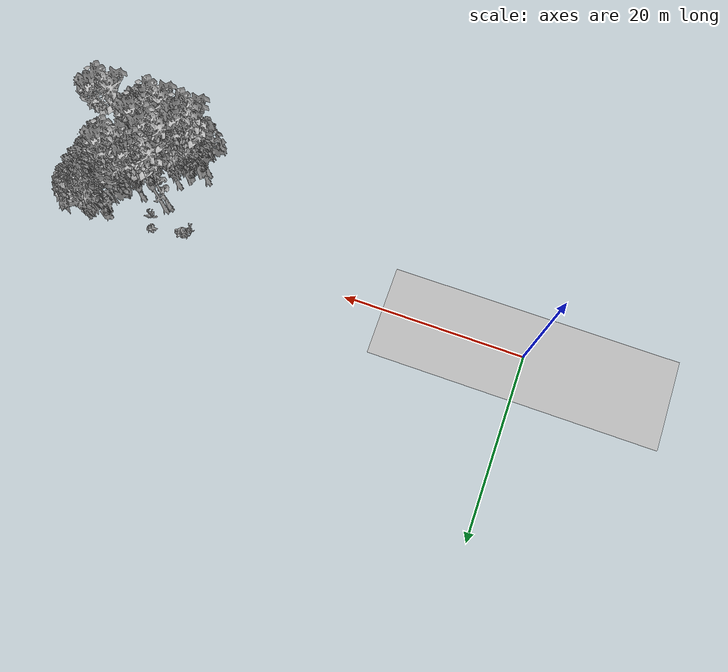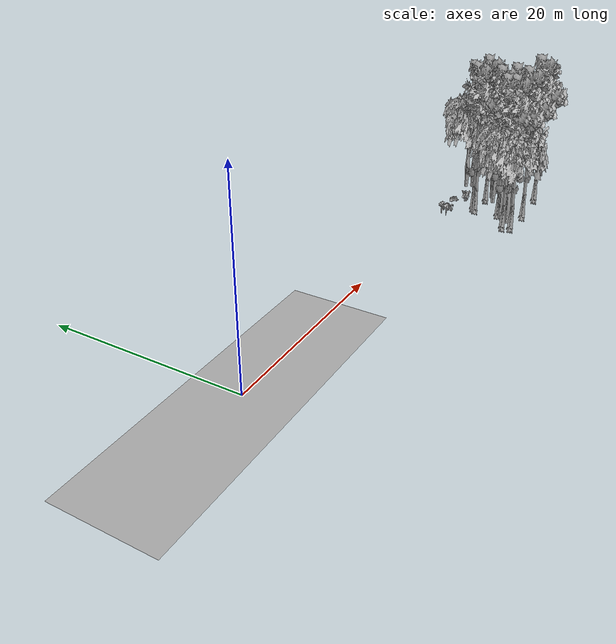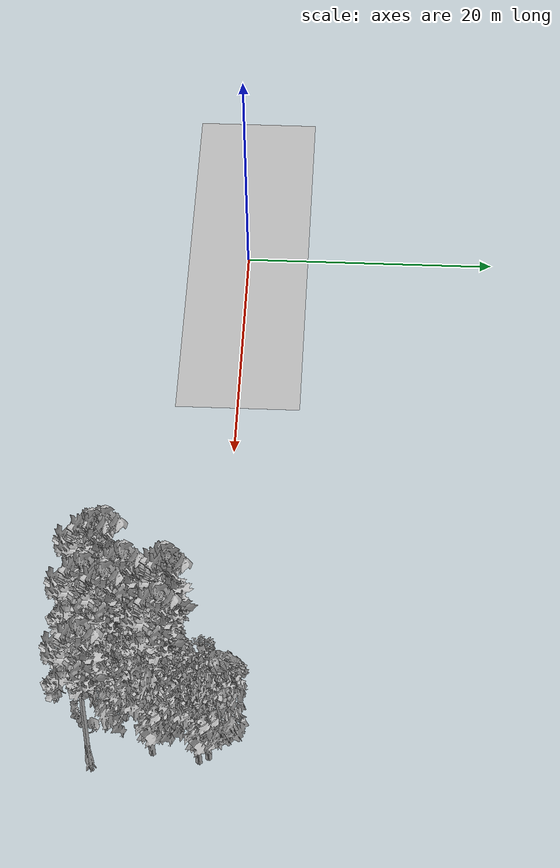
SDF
<sdf version="1.7">
 <world name="default">
  <model name="ground_plane">
   <static>1</static>
   <link name="link">
    <collision name="collision">
     <geometry><plane><normal>0 0 1</normal><size>100 100</size></plane></geometry>
     <surface><contact><ode><min_depth>0.01</min_depth><max_vel>0</max_vel></ode></contact></surface>
    </collision>
    <visual name="grass">
     <cast_shadows>0</cast_shadows>
     <geometry>
      <mesh>
       <scale>0.5814285714285714 0.18142857142857144 0.1</scale>
       <uri>file://grass_plane/meshes/grass_plane.dae</uri>
      </mesh>
     </geometry>
    </visual>
   </link>
  </model>
  <model name="Tree 12">
   <static>1</static>
   <pose>42.74366495596955 -8.739128185458405 0 1.57079 -0 0</pose>
   <link name="link">
    <collision name="collision">
     <geometry><mesh><scale>3.5 5 3.5</scale><uri>model://tree_9/meshes/tree_9.obj</uri></mesh></geometry>
    </collision>
    <visual name="visual">
     <geometry><mesh><scale>3.5 5 3.5</scale><uri>model://tree_9/meshes/tree_9.obj</uri></mesh></geometry>
    </visual>
   </link>
  </model>
  <model name="Tree 33">
   <static>1</static>
   <pose>41.0817297158344 -7.608581405884625 0 1.57079 -0 0</pose>
   <link name="link">
    <collision name="collision">
     <geometry><mesh><scale>3.5 5 3.5</scale><uri>model://tree_2/meshes/tree_2.obj</uri></mesh></geometry>
    </collision>
    <visual name="visual">
     <geometry><mesh><scale>3.5 5 3.5</scale><uri>model://tree_2/meshes/tree_2.obj</uri></mesh></geometry>
    </visual>
   </link>
  </model>
  <model name="Tree 42">
   <static>1</static>
   <pose>41.75406897602221 -3.3906887867092355 0 1.57079 -0 0</pose>
   <link name="link">
    <collision name="collision">
     <geometry><mesh><scale>3.5 5 3.5</scale><uri>model://tree_9/meshes/tree_9.obj</uri></mesh></geometry>
    </collision>
    <visual name="visual">
     <geometry><mesh><scale>3.5 5 3.5</scale><uri>model://tree_9/meshes/tree_9.obj</uri></mesh></geometry>
    </visual>
   </link>
  </model>
  <model name="Tree 43">
   <static>1</static>
   <pose>39.223682710291115 -8.523027827143974 0 1.57079 -0 0</pose>
   <link name="link">
    <collision name="collision">
     <geometry><mesh><scale>3.5 5 3.5</scale><uri>model://tree_9/meshes/tree_9.obj</uri></mesh></geometry>
    </collision>
    <visual name="visual">
     <geometry><mesh><scale>3.5 5 3.5</scale><uri>model://tree_9/meshes/tree_9.obj</uri></mesh></geometry>
    </visual>
   </link>
  </model>
  <model name="Tree 168">
   <static>1</static>
   <pose>47.183860038633796 -0.15700855947370584 0 1.57079 -0 0</pose>
   <link name="link">
    <collision name="collision">
     <geometry><mesh><scale>3.5 5 3.5</scale><uri>model://tree_2/meshes/tree_2.obj</uri></mesh></geometry>
    </collision>
    <visual name="visual">
     <geometry><mesh><scale>3.5 5 3.5</scale><uri>model://tree_2/meshes/tree_2.obj</uri></mesh></geometry>
    </visual>
   </link>
  </model>
  <model name="Tree 208">
   <static>1</static>
   <pose>40.63743900190697 -6.778148345114465 0 1.57079 -0 0</pose>
   <link name="link">
    <collision name="collision">
     <geometry><mesh><scale>3.5 5 3.5</scale><uri>model://tree_2/meshes/tree_2.obj</uri></mesh></geometry>
    </collision>
    <visual name="visual">
     <geometry><mesh><scale>3.5 5 3.5</scale><uri>model://tree_2/meshes/tree_2.obj</uri></mesh></geometry>
    </visual>
   </link>
  </model>
  <model name="Tree 210">
   <static>1</static>
   <pose>38.96305721621451 -7.656295915459372 0 1.57079 -0 0</pose>
   <link name="link">
    <collision name="collision">
     <geometry><mesh><scale>3.5 5 3.5</scale><uri>model://tree_9/meshes/tree_9.obj</uri></mesh></geometry>
    </collision>
    <visual name="visual">
     <geometry><mesh><scale>3.5 5 3.5</scale><uri>model://tree_9/meshes/tree_9.obj</uri></mesh></geometry>
    </visual>
   </link>
  </model>
  <model name="Tree 256">
   <static>1</static>
   <pose>45.42595544063235 -4.059047451546055 0 1.57079 -0 0</pose>
   <link name="link">
    <collision name="collision">
     <geometry><mesh><scale>3.5 5 3.5</scale><uri>model://tree_2/meshes/tree_2.obj</uri></mesh></geometry>
    </collision>
    <visual name="visual">
     <geometry><mesh><scale>3.5 5 3.5</scale><uri>model://tree_2/meshes/tree_2.obj</uri></mesh></geometry>
    </visual>
   </link>
  </model>
  <model name="Tree 271">
   <static>1</static>
   <pose>47.940437532343935 -8.489108751104423 0 1.57079 -0 0</pose>
   <link name="link">
    <collision name="collision">
     <geometry><mesh><scale>3.5 5 3.5</scale><uri>model://tree_9/meshes/tree_9.obj</uri></mesh></geometry>
    </collision>
    <visual name="visual">
     <geometry><mesh><scale>3.5 5 3.5</scale><uri>model://tree_9/meshes/tree_9.obj</uri></mesh></geometry>
    </visual>
   </link>
  </model>
  <model name="Tree 276">
   <static>1</static>
   <pose>41.80104837761826 -6.120153811868997 0 1.57079 -0 0</pose>
   <link name="link">
    <collision name="collision">
     <geometry><mesh><scale>3.5 5 3.5</scale><uri>model://tree_9/meshes/tree_9.obj</uri></mesh></geometry>
    </collision>
    <visual name="visual">
     <geometry><mesh><scale>3.5 5 3.5</scale><uri>model://tree_9/meshes/tree_9.obj</uri></mesh></geometry>
    </visual>
   </link>
  </model>
  <model name="Tree 290">
   <static>1</static>
   <pose>39.80091700174326 -7.834005677650366 0 1.57079 -0 0</pose>
   <link name="link">
    <collision name="collision">
     <geometry><mesh><scale>3.5 5 3.5</scale><uri>model://tree_2/meshes/tree_2.obj</uri></mesh></geometry>
    </collision>
    <visual name="visual">
     <geometry><mesh><scale>3.5 5 3.5</scale><uri>model://tree_2/meshes/tree_2.obj</uri></mesh></geometry>
    </visual>
   </link>
  </model>
  <model name="Tree 330">
   <static>1</static>
   <pose>44.23186218859824 -6.299525661252172 0 1.57079 -0 0</pose>
   <link name="link">
    <collision name="collision">
     <geometry><mesh><scale>3.5 5 3.5</scale><uri>model://tree_2/meshes/tree_2.obj</uri></mesh></geometry>
    </collision>
    <visual name="visual">
     <geometry><mesh><scale>3.5 5 3.5</scale><uri>model://tree_2/meshes/tree_2.obj</uri></mesh></geometry>
    </visual>
   </link>
  </model>
  <model name="Tree 333">
   <static>1</static>
   <pose>44.20327804722501 -4.6542972984919455 0 1.57079 -0 0</pose>
   <link name="link">
    <collision name="collision">
     <geometry><mesh><scale>3.5 5 3.5</scale><uri>model://tree_2/meshes/tree_2.obj</uri></mesh></geometry>
    </collision>
    <visual name="visual">
     <geometry><mesh><scale>3.5 5 3.5</scale><uri>model://tree_2/meshes/tree_2.obj</uri></mesh></geometry>
    </visual>
   </link>
  </model>
  <model name="Tree 342">
   <static>1</static>
   <pose>45.02691341825607 -3.5032429815158554 0 1.57079 -0 0</pose>
   <link name="link">
    <collision name="collision">
     <geometry><mesh><scale>3.5 5 3.5</scale><uri>model://tree_9/meshes/tree_9.obj</uri></mesh></geometry>
    </collision>
    <visual name="visual">
     <geometry><mesh><scale>3.5 5 3.5</scale><uri>model://tree_9/meshes/tree_9.obj</uri></mesh></geometry>
    </visual>
   </link>
  </model>
  <model name="Tree 358">
   <static>1</static>
   <pose>42.0959991112164 -2.99718807251268 0 1.57079 -0 0</pose>
   <link name="link">
    <collision name="collision">
     <geometry><mesh><scale>3.5 5 3.5</scale><uri>model://tree_9/meshes/tree_9.obj</uri></mesh></geometry>
    </collision>
    <visual name="visual">
     <geometry><mesh><scale>3.5 5 3.5</scale><uri>model://tree_9/meshes/tree_9.obj</uri></mesh></geometry>
    </visual>
   </link>
  </model>
  <model name="Tree 385">
   <static>1</static>
   <pose>43.327530110065766 -7.281440796119073 0 1.57079 -0 0</pose>
   <link name="link">
    <collision name="collision">
     <geometry><mesh><scale>3.5 5 3.5</scale><uri>model://tree_9/meshes/tree_9.obj</uri></mesh></geometry>
    </collision>
    <visual name="visual">
     <geometry><mesh><scale>3.5 5 3.5</scale><uri>model://tree_9/meshes/tree_9.obj</uri></mesh></geometry>
    </visual>
   </link>
  </model>
  <model name="Tree 415">
   <static>1</static>
   <pose>47.54166395555508 -0.8132558612128502 0 1.57079 -0 0</pose>
   <link name="link">
    <collision name="collision">
     <geometry><mesh><scale>3.5 5 3.5</scale><uri>model://tree_2/meshes/tree_2.obj</uri></mesh></geometry>
    </collision>
    <visual name="visual">
     <geometry><mesh><scale>3.5 5 3.5</scale><uri>model://tree_2/meshes/tree_2.obj</uri></mesh></geometry>
    </visual>
   </link>
  </model>
  <model name="Tree 428">
   <static>1</static>
   <pose>46.97177252249223 -4.149309650399191 0 1.57079 -0 0</pose>
   <link name="link">
    <collision name="collision">
     <geometry><mesh><scale>3.5 5 3.5</scale><uri>model://tree_2/meshes/tree_2.obj</uri></mesh></geometry>
    </collision>
    <visual name="visual">
     <geometry><mesh><scale>3.5 5 3.5</scale><uri>model://tree_2/meshes/tree_2.obj</uri></mesh></geometry>
    </visual>
   </link>
  </model>
  <model name="Bush 80">
   <static>1</static>
   <pose>39.47956591313081 -0.8617348464469803 0 1.57079 -0 0</pose>
   <link name="link">
    <collision name="collision">
     <geometry><mesh><scale>2 2 2</scale><uri>model://bush_3/meshes/bush_3.obj</uri></mesh></geometry>
     <surface><contact><collide_without_contact>false</collide_without_contact></contact></surface>
    </collision>
    <visual name="visual">
     <geometry><mesh><scale>2 2 2</scale><uri>model://bush_3/meshes/bush_3.obj</uri></mesh></geometry>
    </visual>
   </link>
  </model>
  <model name="Bush 195">
   <static>1</static>
   <pose>43.14517993847089 -1.7441644093500646 0 1.57079 -0 0</pose>
   <link name="link">
    <collision name="collision">
     <geometry><mesh><scale>2 2 2</scale><uri>model://bush_4/meshes/bush_4.obj</uri></mesh></geometry>
     <surface><contact><collide_without_contact>false</collide_without_contact></contact></surface>
    </collision>
    <visual name="visual">
     <geometry><mesh><scale>2 2 2</scale><uri>model://bush_4/meshes/bush_4.obj</uri></mesh></geometry>
    </visual>
   </link>
  </model>
  <model name="Bush 203">
   <static>1</static>
   <pose>42.65199883409191 -0.4280736047403426 0 1.57079 -0 0</pose>
   <link name="link">
    <collision name="collision">
     <geometry><mesh><scale>2 2 2</scale><uri>model://bush_2/meshes/bush_2.obj</uri></mesh></geometry>
     <surface><contact><collide_without_contact>false</collide_without_contact></contact></surface>
    </collision>
    <visual name="visual">
     <geometry><mesh><scale>2 2 2</scale><uri>model://bush_2/meshes/bush_2.obj</uri></mesh></geometry>
    </visual>
   </link>
  </model>
  <model name="Bush 259">
   <static>1</static>
   <pose>38.56774889547077 -0.5540692963188061 0 1.57079 -0 0</pose>
   <link name="link">
    <collision name="collision">
     <geometry><mesh><scale>2 2 2</scale><uri>model://bush_5/meshes/bush_5.obj</uri></mesh></geometry>
     <surface><contact><collide_without_contact>false</collide_without_contact></contact></surface>
    </collision>
    <visual name="visual">
     <geometry><mesh><scale>2 2 2</scale><uri>model://bush_5/meshes/bush_5.obj</uri></mesh></geometry>
    </visual>
   </link>
  </model>
  <model name="Bush 268">
   <static>1</static>
   <pose>38.374857526975745 -1.1930524624922025 0 1.57079 -0 0</pose>
   <link name="link">
    <collision name="collision">
     <geometry><mesh><scale>2 2 2</scale><uri>model://bush_5/meshes/bush_5.obj</uri></mesh></geometry>
     <surface><contact><collide_without_contact>false</collide_without_contact></contact></surface>
    </collision>
    <visual name="visual">
     <geometry><mesh><scale>2 2 2</scale><uri>model://bush_5/meshes/bush_5.obj</uri></mesh></geometry>
    </visual>
   </link>
  </model>
 </world>
</sdf>
